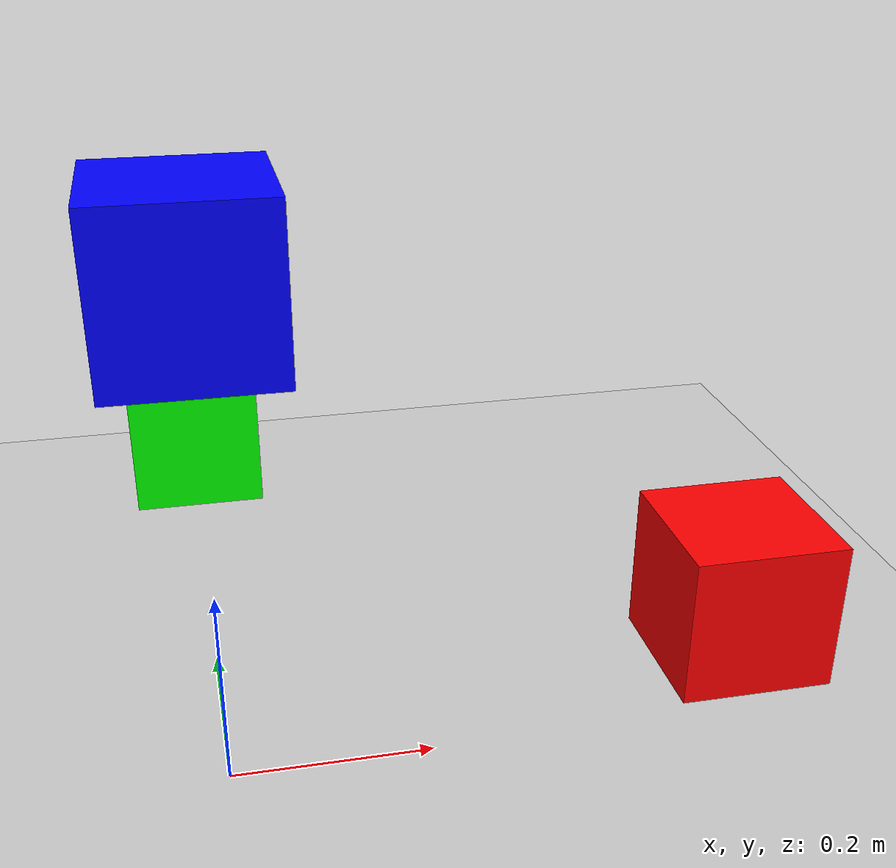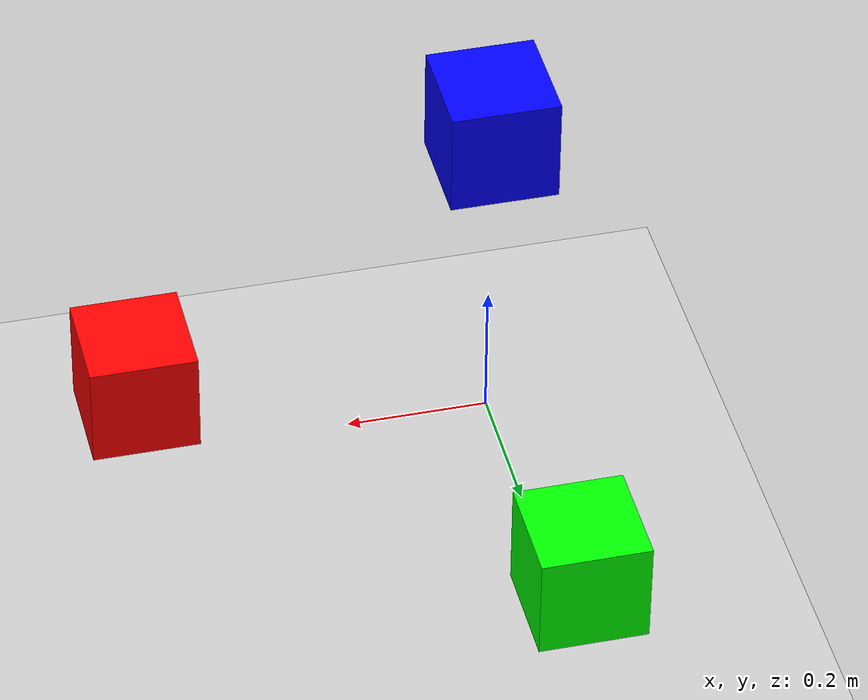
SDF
<?xml version="1.0" ?>
<sdf version="1.8">
  <world name="realsense_world">

    <!-- Physics -->
    <physics name="1ms" type="ignored">
      <max_step_size>0.001</max_step_size>
      <real_time_factor>1.0</real_time_factor>
    </physics>

    <!-- Plugins -->
    <plugin
      filename="gz-sim-physics-system"
      name="gz::sim::systems::Physics">
    </plugin>
    <plugin
      filename="gz-sim-user-commands-system"
      name="gz::sim::systems::UserCommands">
    </plugin>
    <plugin
      filename="gz-sim-scene-broadcaster-system"
      name="gz::sim::systems::SceneBroadcaster">
    </plugin>
    <plugin
      filename="gz-sim-sensors-system"
      name="gz::sim::systems::Sensors">
      <render_engine>ogre2</render_engine>
    </plugin>

    <!-- Lighting -->
    <light type="directional" name="sun">
      <cast_shadows>true</cast_shadows>
      <pose>0 0 10 0 0 0</pose>
      <diffuse>0.8 0.8 0.8 1</diffuse>
      <specular>0.2 0.2 0.2 1</specular>
      <attenuation>
        <range>1000</range>
        <constant>0.9</constant>
        <linear>0.01</linear>
        <quadratic>0.001</quadratic>
      </attenuation>
      <direction>-0.5 0.1 -0.9</direction>
    </light>

    <!-- Ground Plane -->
    <model name="ground_plane">
      <static>true</static>
      <link name="link">
        <collision name="collision">
          <geometry>
            <plane>
              <normal>0 0 1</normal>
            </plane>
          </geometry>
        </collision>
        <visual name="visual">
          <geometry>
            <plane>
              <normal>0 0 1</normal>
              <size>100 100</size>
            </plane>
          </geometry>
          <material>
            <ambient>0.8 0.8 0.8 1</ambient>
            <diffuse>0.8 0.8 0.8 1</diffuse>
            <specular>0.8 0.8 0.8 1</specular>
          </material>
        </visual>
      </link>
    </model>

    <!-- Red box - positive X -->
    <model name="box_x">
      <pose>0.5 0 0.15 0 0 0</pose>
      <static>true</static>
      <link name="link">
        <visual name="visual">
          <geometry>
            <box>
              <size>0.15 0.15 0.15</size>
            </box>
          </geometry>
          <material>
            <ambient>1 0 0 1</ambient>
            <diffuse>1 0 0 1</diffuse>
          </material>
        </visual>
      </link>
    </model>

    <!-- Green box - positive Y -->
    <model name="box_y">
      <pose>0 0.5 0.15 0 0 0</pose>
      <static>true</static>
      <link name="link">
        <visual name="visual">
          <geometry>
            <box>
              <size>0.15 0.15 0.15</size>
            </box>
          </geometry>
          <material>
            <ambient>0 1 0 1</ambient>
            <diffuse>0 1 0 1</diffuse>
          </material>
        </visual>
      </link>
    </model>

    <!-- Blue box - positive Z -->
    <model name="box_z">
      <pose>0 0 0.5 0 0 0</pose>
      <static>true</static>
      <link name="link">
        <visual name="visual">
          <geometry>
            <box>
              <size>0.15 0.15 0.15</size>
            </box>
          </geometry>
          <material>
            <ambient>0 0 1 1</ambient>
            <diffuse>0 0 1 1</diffuse>
          </material>
        </visual>
      </link>
    </model>

  </world>
</sdf>
